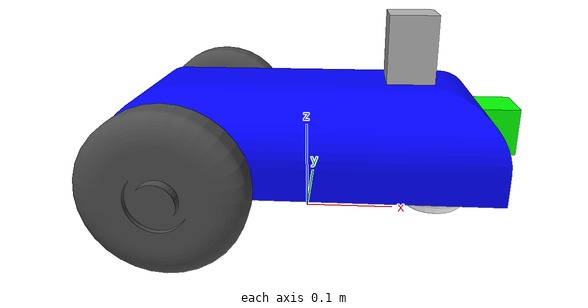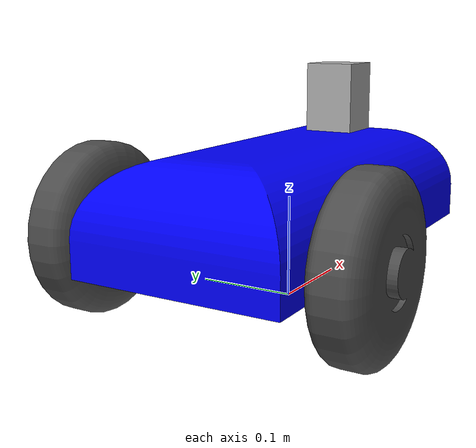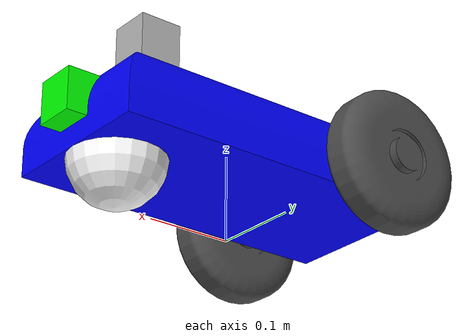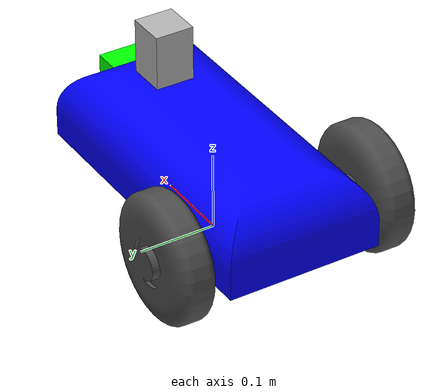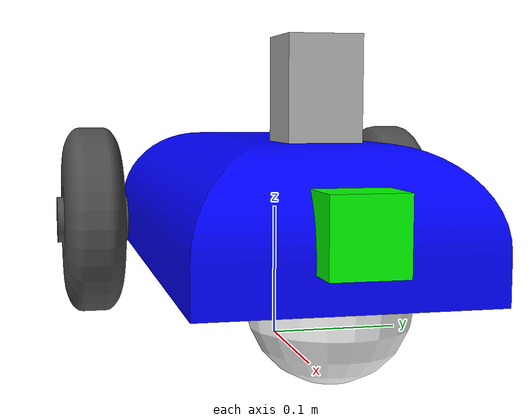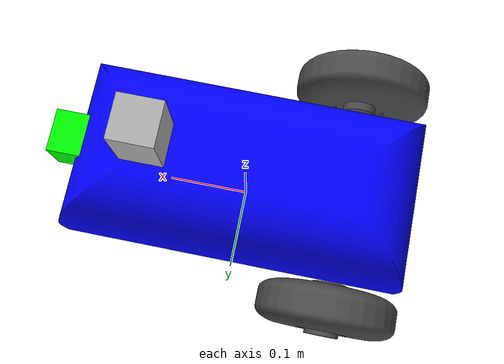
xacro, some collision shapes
<?xml version="1.0"?>
<robot name="diffbot" xmlns:xacro="http://www.ros.org/wiki/xacro">

<!-- ****************************************************** Diffbot Robot ***************************************************************  -->
<!-- Muthanna Alwahash                                                                                                                  -->
<!-- March 2022                                                                                                                         -->

<!-- ****************************************************** Parameters ***************************************************************  -->

    <xacro:property name="pkg_path"     value="$(find bots)"                />
    <xacro:property name="mesh_path"    value="${pkg_path}/meshes/diffbot/"    />
    <xacro:property name="config_path"  value="${pkg_path}/config/"         />

    <xacro:property name="name_space"   value="diffbot" />
    <xacro:property name="prefix"       value=""      />

<!-- ****************************************************** Includes *****************************************************************  -->

    <xacro:include filename="${pkg_path}/xacro/common_rviz_materials.xacro" />  <!--  RVIZ Colors  -->
    <xacro:include filename="${pkg_path}/xacro/urdf_diffbot.xacro" />           <!--  Robot URDF   -->
    <xacro:include filename="${pkg_path}/gazebo/gz_diffbot.xacro" />            <!--  Gazebo Sim   -->
    <xacro:include filename="${pkg_path}/r2c/r2c_diffbot.xacro" />              <!--  ROS2_Control -->

<!-- ****************************************************** END **********************************************************************  -->

</robot>

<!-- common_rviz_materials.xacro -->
<!-- ****************************************************** RVIZ Colors **************************************************************  -->
<!-- Muthanna Alwahash                                                                                                                  -->
<!-- March 2022                                                                                                                         -->

<robot>

  <material name="red">
    <color rgba="1.0 0.0 0.0 1.0"/>
  </material>

  <material name="green">
    <color rgba="0.0 1.0 0.0 1.0"/>
  </material>

  <material name="blue">
    <color rgba="0.0 0.0 1.0 1.0"/>
  </material>

  <material name="black">
    <color rgba="0.3 0.3 0.3 1.0"/>
  </material>

  <material name="white">
    <color rgba="1.0 1.0 1.0 1.0"/>
  </material>

  <material name="grey">
    <color rgba="0.2 0.2 0.2 1.0"/>
  </material>

  <material name="orange">
    <color rgba="${255/255} ${108/255} ${10/255} 1.0"/>
  </material>

  <material name="brown">
    <color rgba="${222/255} ${207/255} ${195/255} 1.0"/>
  </material>

  <material name="yellow">
    <color rgba="1.0 1.0 0.0 1.0"/>
  </material>

</robot>

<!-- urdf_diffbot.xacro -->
<robot name="diffbot" xmlns:xacro="http://www.ros.org/wiki/xacro">

<!-- ****************************************************** diffbot Robot ************************************************************  -->
<!-- Muthanna Alwahash                                                                                                                  -->
<!-- March 2022                                                                                                                         -->

<!-- ****************************************************** Parameters ***************************************************************  -->

  <xacro:property name="base_mass"      value="0.6"                               />  <!-- arbitrary value for base mass                -->
  <xacro:property name="base_width"     value="0.20"                              />
  <xacro:property name="base_length"    value="0.40"                              />
  <xacro:property name="base_height"    value="0.10"                              />

  <xacro:property name="wheel_mass"     value="5.0"                               />
  <xacro:property name="wheel_width"    value="0.05"                              />
  <xacro:property name="wheel_radius"   value="0.08"                              />
  <xacro:property name="wheel_gap"      value="0.01"                              /> <!-- Gap between wheels and base                   -->
  <xacro:property name="wheel_x"        value="0.12"                              /> <!-- x offset from base center -->
  <xacro:property name="wheel_y"        value="${(base_width+wheel_width)/2+wheel_gap}" />
  <xacro:property name="wheel_z"        value="${base_height/4}"                  />  <!-- Space btw top of beam and the each joint     -->

  <xacro:property name="caster_mass"    value="0.1"                               />  <!-- arbitrary value for caster wheel mass        -->
  <xacro:property name="caster_radius"  value="${wheel_radius-wheel_z}"           />
  <xacro:property name="caster_x"       value="${(base_length/2 - caster_radius)}" />
  <xacro:property name="caster_z"       value="${base_height/2}"/>

  <xacro:property name="camera_mass"    value="0.1"      />
  <xacro:property name="camera_width"   value="0.05"     />
  <xacro:property name="camera_length"  value="0.05"     />
  <xacro:property name="camera_height"  value="0.05"     />
  <xacro:property name="camera_x"       value="0.2"      /> <!-- x offset from base center -->

  <xacro:property name="hokuyo_mass"    value="1e-5"     />
  <xacro:property name="hokuyo_width"   value="0.05"     />
  <xacro:property name="hokuyo_length"  value="0.05"     />
  <xacro:property name="hokuyo_height"  value="0.0706"   />
  <xacro:property name="hokuyo_x"       value="0.11"     /> <!-- x offset from base center -->
  <xacro:property name="hokuyo_z"       value="${(hokuyo_height+base_height)/2}" />

<!-- ****************************************************** Footprint ****************************************************************  -->

    <link name="${prefix}footprint"/>

<!-- ****************************************************** Base Joint ***************************************************************  -->

    <joint name="footprint_joint" type="fixed">
        <parent link="footprint"/>
        <child link="${prefix}base"/>
        <origin xyz="0.0 0.0 ${(wheel_radius+wheel_z)}" rpy="0.0 0.0 0.0"/>
    </joint>

<!-- ****************************************************** Base Link ****************************************************************  -->

  <link name="${prefix}base">
    <collision>
      <origin xyz="0 0 0" rpy="0 0 0"/>
      <geometry>
        <mesh filename="${mesh_path}base.stl" scale="1 1 1"/>
      </geometry>
    </collision>
    <visual>
      <origin xyz="0 0 0" rpy="0 0 0"/>
      <geometry>
        <mesh filename="${mesh_path}base.stl" scale="1 1 1"/>
      </geometry>
      <material name="blue"/>
    </visual>
    <inertial>
      <origin xyz="0 0 0" rpy="0 0 0"/>
      <mass value="${base_mass}"/>
      <inertia
        ixx="${base_mass / 12.0 * (base_length*base_length + base_height*base_height)}" ixy="0.0" ixz="0.0"
        iyy="${base_mass / 12.0 * (base_height*base_height + base_width*base_width)}" iyz="0.0"
        izz="${base_mass / 12.0 * (base_width*base_width + base_length*base_length)}"/>
    </inertial>
  </link>

<!-- ****************************************************** Right Wheel Joint ********************************************************  -->

    <joint name="${prefix}right_wheel_joint" type="continuous">
      <parent link="${prefix}base"/>
      <child link="${prefix}right_wheel"/>
      <origin xyz="-${wheel_x} ${wheel_y} -${wheel_z}" rpy="0 0 0"/>
      <limit upper="${radians(180)}" lower="-${radians(180)}" effort="30" velocity="5.0"/>
      <axis xyz="0 1 0"/>
      <dynamics damping="0.2"/>
    </joint>

<!-- ****************************************************** Right Wheel Link ********************************************************  -->

    <link name="${prefix}right_wheel">
      <collision>
        <origin xyz="0 0 0" rpy="${radians(90)} 0 0"/>
        <geometry>
          <mesh filename="${mesh_path}wheel.dae" scale="1 1 1"/>
        </geometry>
      </collision>
      <visual>
        <origin xyz="0 0 0" rpy="${radians(90)} 0 0"/>
        <geometry>
          <mesh filename="${mesh_path}wheel.dae" scale="1 1 1"/>
        </geometry>
        <material name="black"/>
      </visual>
      <inertial>
        <origin xyz="0 0 0" rpy="${radians(90)} 0 0"/>
        <mass value="${wheel_mass}"/>
        <inertia
          ixx="${wheel_mass / 12.0 * (3*wheel_radius + wheel_width*wheel_width)}" ixy="0.0" ixz="0.0"
          iyy="${wheel_mass / 12.0 * wheel_radius*wheel_radius}" iyz="0.0"
          izz="${wheel_mass / 12.0 * wheel_radius*wheel_radius}"/>
      </inertial>
    </link>

<!-- ****************************************************** Left Wheel Joint *********************************************************  -->

    <joint name="${prefix}left_wheel_joint" type="continuous">
      <parent link="${prefix}base"/>
      <child link="${prefix}left_wheel"/>
      <origin xyz="-${wheel_x} -${wheel_y} -${wheel_z}" rpy="0 0 0"/>
      <limit upper="${radians(180)}" lower="-${radians(180)}" effort="30" velocity="5.0"/>
      <axis xyz="0 1 0"/>
      <dynamics damping="0.2"/>
    </joint>

<!-- ****************************************************** Left Wheel Link **********************************************************  -->

    <link name="${prefix}left_wheel">
      <collision>
        <origin xyz="0 0 0" rpy="${radians(90)} 0 0"/>
        <geometry>
          <mesh filename="${mesh_path}wheel.dae" scale="1 1 1"/>
        </geometry>
      </collision>
      <visual>
        <origin xyz="0 0 0" rpy="${radians(90)} 0 0"/>
        <geometry>
          <mesh filename="${mesh_path}wheel.dae" scale="1 1 1"/>
        </geometry>
        <material name="black"/>
      </visual>
      <inertial>
        <origin xyz="0 0 0" rpy="${radians(90)} 0 0"/>
        <mass value="${wheel_mass}"/>
        <inertia
          ixx="${wheel_mass / 12.0 * (3*wheel_radius + wheel_width*wheel_width)}" ixy="0.0" ixz="0.0"
          iyy="${wheel_mass / 12.0 * wheel_radius*wheel_radius}" iyz="0.0"
          izz="${wheel_mass / 12.0 * wheel_radius*wheel_radius}"/>
      </inertial>
    </link>

<!-- ****************************************************** Front caster joint *******************************************************  -->

    <joint name="${prefix}front_caster_joint" type="fixed">
      <parent link="${prefix}base"/>
      <child link="${prefix}front_caster"/>
      <origin xyz="${caster_x} 0 ${-caster_z}" rpy="0 0 0"/>
    </joint>

<!-- ****************************************************** Front caster Link ********************************************************  -->

    <link name="${prefix}front_caster">
      <collision>
        <origin xyz="0 0 0" rpy="0 0 0"/>
        <geometry>
          <sphere radius="${caster_radius}"/>
        </geometry>
      </collision>
      <visual>
        <origin xyz="0 0 0" rpy="0 0 0"/>
        <geometry>
          <sphere radius="${caster_radius}"/>
        </geometry>
        <material name="white"/>
      </visual>
      <inertial>
        <origin xyz="0 0 0" rpy="0 0 0"/>
        <mass value="${caster_mass}"/>
        <inertia
          ixx="${caster_mass * 0.4 * (caster_radius * caster_radius)}" ixy="0.0" ixz="0.0"
          iyy="${caster_mass * 0.4 * (caster_radius * caster_radius)}" iyz="0.0"
          izz="${caster_mass * 0.4 * (caster_radius * caster_radius)}"/>
      </inertial>
    </link>

<!-- ****************************************************** Camera Link **************************************************************  -->

  <link name="${prefix}camera">
    <inertial>
      <mass value="${camera_mass}"/>
      <origin xyz="0 0 0" rpy=" 0 0 0"/>
      <inertia ixx="1e-6" ixy="0" ixz="0" iyy="1e-6" iyz="0" izz="1e-6" />
    </inertial>
    <visual name="camera_visual">
      <origin xyz="0 0 0" rpy="0 0 0" />
      <geometry>
        <box size="${camera_length} ${camera_width} ${camera_height}"/>
      </geometry>
      <material name="green"/>
    </visual>
    <collision name="camera_colision">
      <origin xyz="0 0 0" rpy="0 0 0" />
      <geometry>
        <box size="${camera_length} ${camera_width} ${camera_height}"/>
      </geometry>
    </collision>
  </link>

<!-- ****************************************************** Camera Joint *************************************************************  -->

  <joint type="fixed" name="${prefix}camera_joint">
    <origin xyz="${camera_x} 0 0" rpy="0 0 0"/>
    <child link="${prefix}camera"/>
    <parent link="${prefix}base"/>
    <axis xyz="0 1 0" rpy="0 0 0"/>
  </joint>

<!-- ****************************************************** Camera Optical Joint *****************************************************  -->
<!-- generate an optical frame http://www.ros.org/reps/rep-0103.html#suffix-frames so that ros and opencv can operate on the camera     -->
<!-- frame correctly. these values have to be these values otherwise the gazebo camera image won't be aligned properly with the frame   -->
<!-- it is supposedly originating from                                                                                                  -->                                                                                                                   -->

  <joint name="${prefix}camera_optical_joint" type="fixed">
    <origin xyz="0 0 0" rpy="${-radians(90)} 0 ${-radians(90)}"/>
    <parent link="${prefix}camera"/>
    <child link="${prefix}camera_optical"/>
  </joint>

<!-- ****************************************************** Camera Optical Link ******************************************************  -->

  <link name="${prefix}camera_optical"/>

<!-- ****************************************************** Hokuyo Link **************************************************************  -->

  <link name="${prefix}hokuyo">
    <inertial>
      <mass value="${hokuyo_mass}"/>
      <origin xyz="0 0 0" rpy=" 0 0 0"/>
      <inertia ixx="1e-6" ixy="0" ixz="0" iyy="1e-6" iyz="0" izz="1e-6" />
    </inertial>
    <visual name="hokuyo_visual">
      <origin xyz="0 0 0" rpy="0 0 0" />
      <geometry>
        <mesh filename="${mesh_path}hokuyo.dae"/>
      </geometry>
    </visual>
    <collision name="hokuyo_colision">
      <origin xyz="0 0 0" rpy="0 0 0" />
      <geometry>
        <box size="${hokuyo_length} ${hokuyo_width} ${hokuyo_height}"/>
      </geometry>
    </collision>
  </link>

<!-- ****************************************************** Hokuyo Joint *************************************************************  -->

  <joint type="fixed" name="${prefix}hokuyo_joint">
    <origin xyz="${hokuyo_x} 0 ${hokuyo_z}" rpy="0 0 0"/>
    <child link="${prefix}hokuyo"/>
    <parent link="${prefix}base"/>
    <axis xyz="0 1 0" rpy="0 0 0"/>
  </joint>

<!-- ****************************************************** END **********************************************************************  -->

</robot>
